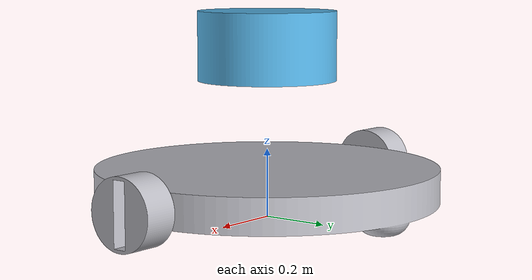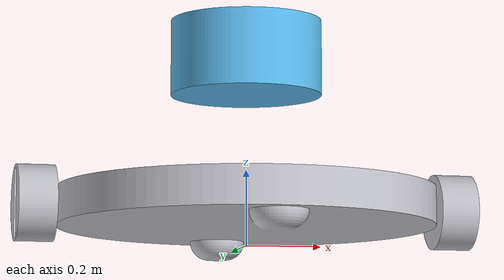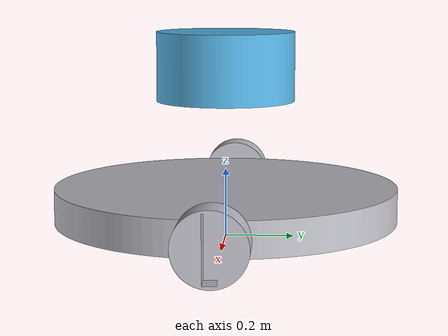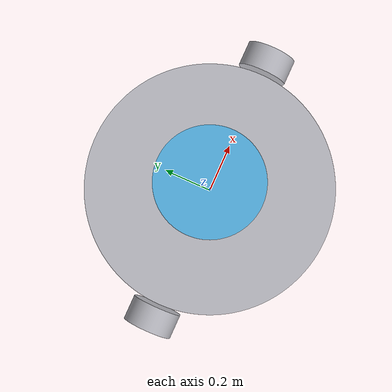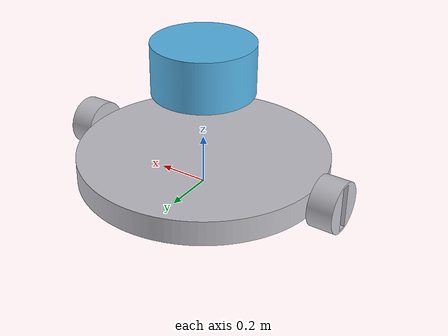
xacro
<?xml version="1.0"?>
<robot name="dd_robot" xmlns:xacro="http://www.ros.org/wiki/xacro">

<xacro:include filename="$(find dd_robot)/urdf/material.xacro" />
<xacro:include filename="$(find dd_robot)/urdf/dd_robot.trans" />
<xacro:include filename="$(find dd_robot)/urdf/dd_robot.gazebo" />

     <link name="base">
        <inertial>
            <origin xyz="0.0 0.0 0.05" rpy="0.0 0.0 1.57"/>
            <mass value="1.0"/>
            <inertia ixx="4.079e+01" ixy="3.570e-14" ixz="-3.018e-11" iyy="3.911e+01" iyz="-2.177e-09" izz="7.877e+01"/>
        </inertial>

        <visual>
            <origin rpy="0.0 0.0 1.57" xyz="0.0 0.0 0.05"/>
            <geometry>
                <mesh filename="package://dd_robot/mesh/DD_4.stl" scale="0.01 0.01 0.01"/>
            </geometry>
        </visual>

        <collision>
            <origin rpy="0.0 0.0 1.57" xyz="0.0 0.0 0.05"/>
            <geometry>
                <mesh filename="package://dd_robot/mesh/DD_4.stl" scale="0.01 0.01 0.01"/>
            </geometry>
        </collision>
    </link>

    <link name="lidar">
        <inertial>
            <origin xyz="0.0 0.0 0.15" rpy="0.0 0.0 0.0"/>
            <mass value="1.0"/>
            <inertia ixx="0.26305599" ixy="0.0" ixz="0.0" iyy="0.26305604" iyz="0.0" izz="0.39458401"/>
        </inertial>

        <visual>
            <origin rpy="0.0 0.0 0.0" xyz="0.0 0.0 0.15"/>
            <geometry>
                <mesh filename="package://dd_robot/mesh/Lidar_2.stl" scale="0.01 0.01 0.01"/>
            </geometry>
        </visual>

        <collision>
            <origin rpy="0.0 0.0 0.0" xyz="0.0 0.0 0.15"/>
            <geometry>
                <mesh filename="package://dd_robot/mesh/Lidar_2.stl" scale="0.01 0.01 0.01"/>
            </geometry>
        </collision>
    </link>

    <link name="wheel1">
        <inertial>
            <origin xyz="0.0 0.0 0.0" rpy="0.0 0.0 0.0"/>
            <mass value="1.0"/>
            <inertia ixx="0.1233075" ixy="0.0" ixz="0.0" iyy="0.082205" iyz="0.0" izz="0.082205"/>
        </inertial>

        <visual>
            <origin rpy="0.0 0.0 0.0" xyz="0.0 0.0 0.0"/>
            <geometry>
                <mesh filename="package://dd_robot/mesh/Wheel4_R.stl" scale="0.01 0.01 0.01"/>
            </geometry>
        </visual>

        <collision>
            <origin rpy="0.0 0.0 0.0" xyz="0.0 0.0 0.0"/>
            <geometry>
                <mesh filename="package://dd_robot/mesh/Wheel4_R.stl" scale="0.01 0.01 0.01"/>
            </geometry>
        </collision>
    </link>

    <link name="wheel2">
        <inertial>
            <origin xyz="0.0 0.0 0.0" rpy="0.0 0.0 0.0"/>
            <mass value="1.0"/>
            <inertia ixx="0.1233075" ixy="0.0" ixz="0.0" iyy="0.082205" iyz="0.0" izz="0.082205"/>
        </inertial>

        <visual>
            <origin rpy="0.0 0.0 0.0" xyz="0.0 0.0 0.0"/>
            <geometry>
                <mesh filename="package://dd_robot/mesh/Wheel4_L.stl" scale="0.01 0.01 0.01"/>
            </geometry>
        </visual>

        <collision>
            <origin rpy="0.0 0.0 0.0" xyz="0.0 0.0 0.0"/>
            <geometry>
                <mesh filename="package://dd_robot/mesh/Wheel4_L.stl" scale="0.01 0.01 0.01"/>
            </geometry>
        </collision>
    </link>

    <joint name="lidar_j" type="fixed">
        <parent link="base"/>
        <child link="lidar"/>
        <origin rpy="0.0 0.0 0.0" xyz="0.0 0.0 0.25"/>
    </joint>

    <joint name="joint1" type="continuous">
        <parent link="base"/>
        <child link="wheel1"/>
        <origin rpy="0.0 0.0 0.0" xyz="0.51 0.0 0.1"/>
        <axis xyz="1.0 0.0 0.0"/>
        <dynamics damping="0.8" friction="500.0"/>

    </joint>

    <joint name="joint2" type="continuous">
        <parent link="base"/>
        <child link="wheel2"/>
        <origin rpy="0.0 0.0 0.0" xyz="-0.51 0.0 0.1"/>
        <axis xyz="1.0 0.0 0.0"/>
        <dynamics damping="0.8" friction="500.0"/>

    </joint>
</robot>

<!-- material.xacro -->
<robot name="dd_robot" xmlns:xacro="http://www.ros.org/wiki/xacro" >

<material name="silver">
  <color rgba="0.700 0.700 0.700 1.000"/>
</material>

</robot>

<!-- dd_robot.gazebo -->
<robot name="dd_robot" xmlns:xacro="http://www.ros.org/wiki/xacro" >

<xacro:property name="body_color" value="Gazebo/Silver" />

<gazebo>
  <plugin filename="libgazebo_ros_control.so" name="control"/>
</gazebo>

<gazebo reference="base">
  <material>${body_color}</material>
  <mu1>0.2</mu1>
  <mu2>0.2</mu2>
  <selfCollide>true</selfCollide>
  <gravity>true</gravity>
</gazebo>

<gazebo reference="wheel1">
  <material>${body_color}</material>
  <mu1>15</mu1>
  <mu2>15000000000000000000000000</mu2>
  <selfCollide>false</selfCollide>
  <gravity>true</gravity>
</gazebo>

<gazebo reference="wheel2">
  <material>${body_color}</material>
  <mu1>15</mu1>
  <mu2>15000000000000000000000000</mu2>
  <selfCollide>false</selfCollide>
  <gravity>true</gravity>
</gazebo>

<gazebo>
  <plugin name="differential_drive_controller" filename="libgazebo_ros_diff_drive.so">

    <!-- Plugin update rate in Hz -->
    <updateRate>100</updateRate>

    <!-- Name of left joint, defaults to `left_joint` -->
    <leftJoint>joint1</leftJoint>

    <!-- Name of right joint, defaults to `right_joint` -->
    <rightJoint>joint2</rightJoint>

    <!-- The distance from the center of one wheel to the other, in meters, defaults to 0.34 m -->
    <wheelSeparation>0.122</wheelSeparation>

    <!-- Diameter of the wheels, in meters, defaults to 0.15 m -->
    <wheelDiameter>0.010</wheelDiameter>

    <!-- Wheel acceleration, in rad/s^2, defaults to 0.0 rad/s^2 -->
    <wheelAcceleration>0.0</wheelAcceleration>

    <!-- Maximum torque which the wheels can produce, in Nm, defaults to 5 Nm -->
    <wheelTorque>2</wheelTorque>

    <!-- Topic to receive geometry_msgs/Twist message commands, defaults to `cmd_vel` -->
    <commandTopic>cmd_vel</commandTopic>

    <!-- Topic to publish nav_msgs/Odometry messages, defaults to `odom` -->
    <odometryTopic>odom</odometryTopic>

    <!-- Odometry frame, defaults to `odom` -->
    <odometryFrame>odom</odometryFrame>

    <!-- Robot frame to calculate odometry from, defaults to `base_footprint` -->
    <robotBaseFrame>base</robotBaseFrame>

    <!-- Odometry source, 0 for ENCODER, 1 for WORLD, defaults to WORLD -->
    <odometrySource>1</odometrySource>

    <!-- Set to true to publish transforms for the wheel links, defaults to false -->
    <publishWheelTF>false</publishWheelTF>

    <!-- Set to true to publish transforms for the odometry, defaults to true -->
    <publishOdom>true</publishOdom>

    <!-- Set to true to publish sensor_msgs/JointState on /joint_states for the wheel joints, defaults to false -->
    <publishWheelJointState>false</publishWheelJointState>

    <!-- Set to true to swap right and left wheels, defaults to true -->
    <legacyMode>false</legacyMode>
  </plugin>
</gazebo>

<gazebo reference="lidar">
    <sensor type="ray" name="head_hokuyo_sensor">
      <pose>0 0 0 0 0 0</pose>
      <visualize>true</visualize>
      <update_rate>40</update_rate>
      <ray>
        <scan>
          <horizontal>
            <samples>720</samples>
            <resolution>1</resolution>
            <min_angle>-3.147</min_angle>
            <max_angle>3.147</max_angle>
          </horizontal>
        </scan>
        <range>
          <min>0.10</min>
          <max>300000000.0</max>
          <resolution>0.01</resolution>
        </range>
        <noise>
          <type>gaussian</type>
          <mean>0.0</mean>
          <stddev>0.01</stddev>
        </noise>
      </ray>
      <plugin name="gazebo_ros_head_hokuyo_controller" filename="libgazebo_ros_laser.so">
        <topicName>/scan</topicName>
        <frameName>lidar</frameName>
      </plugin>
    </sensor>
  </gazebo>

</robot>
